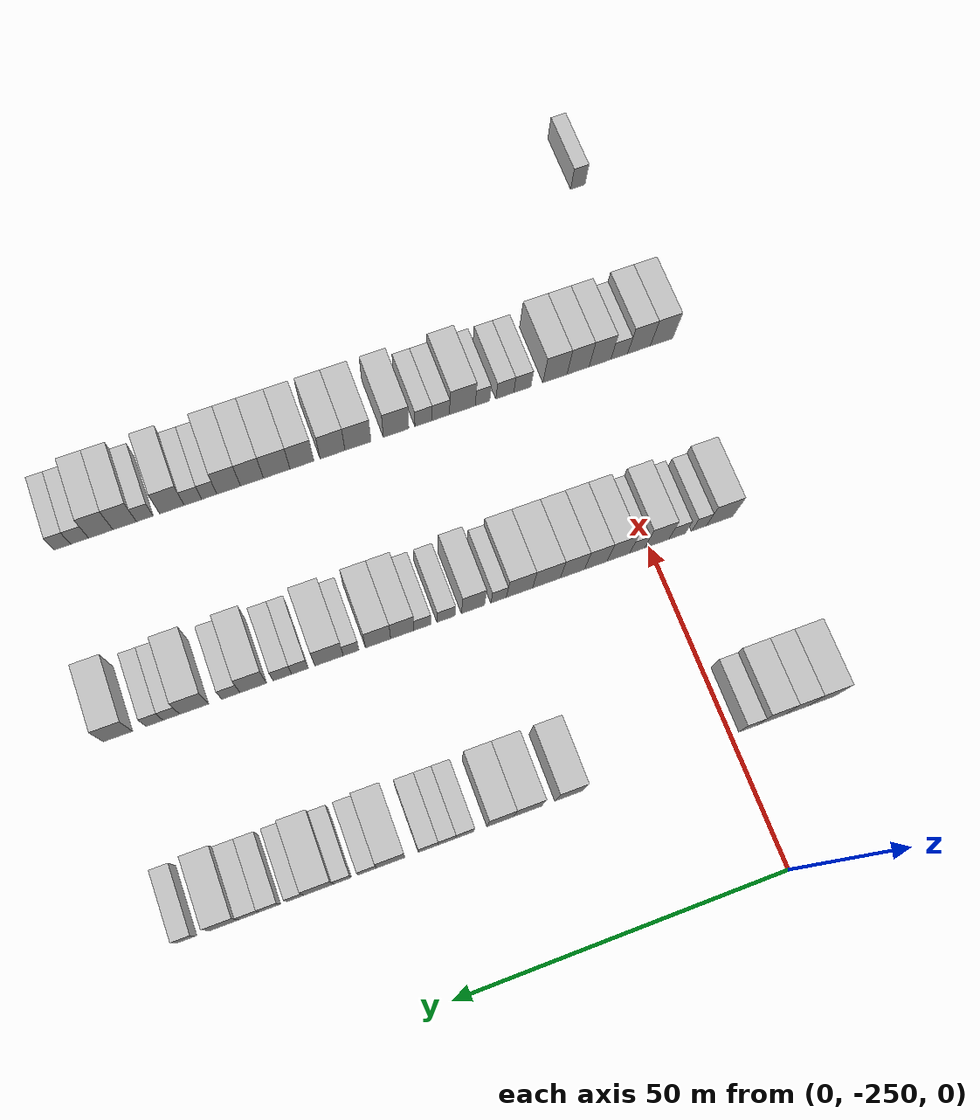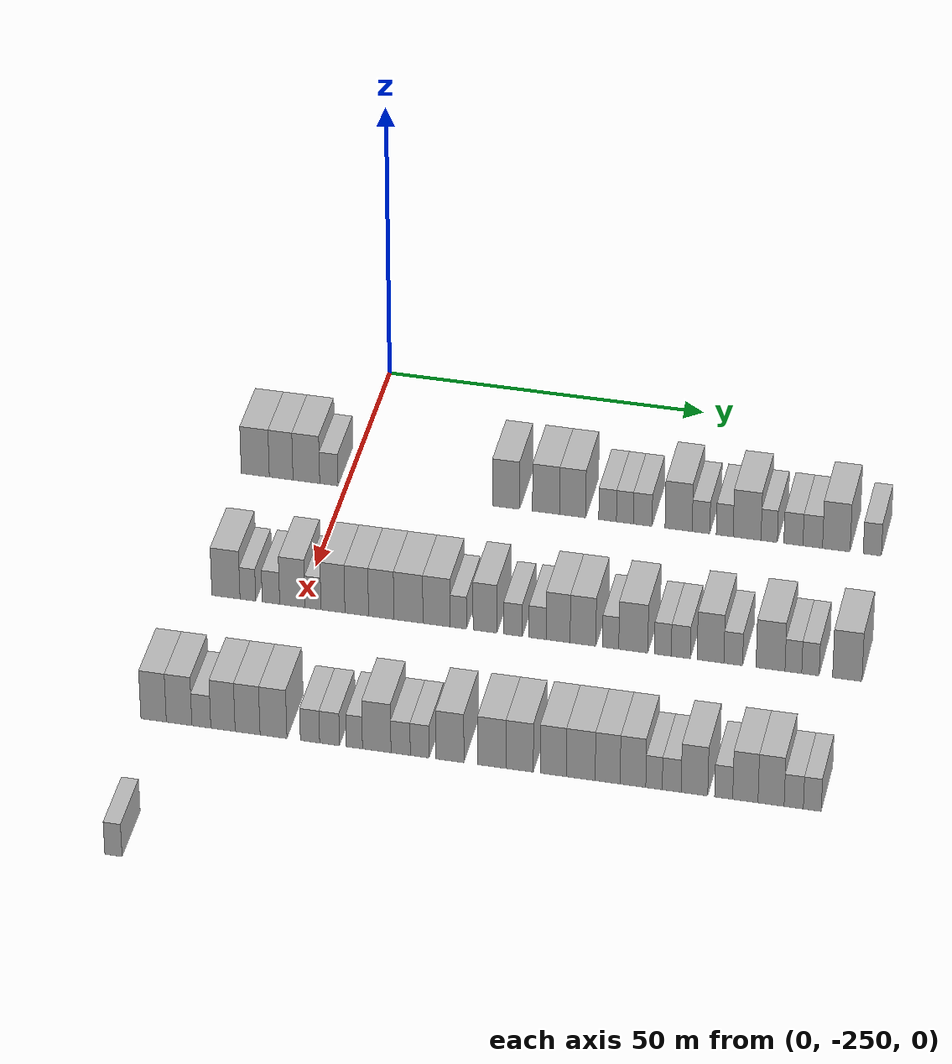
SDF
<sdf version="1.6">
 <world name="default">
  <model name="building_52">
   <static>1</static>
   <pose>25.0000 -264.3539 0 0.000000 0.000000 0.000000</pose>
   <link name="link">
    <pose>0 0 4.50 0 0 0</pose>
    <collision name="collision"><geometry><box><size>10.0000 4.4242 9.0000</size></box></geometry></collision>
    <visual name="visual">
     <cast_shadows>0</cast_shadows>
     <geometry><box><size>10.0000 4.4242 9.0000</size></box></geometry>
     <material>
      <script>
       <uri>model://HANNAS_wall/materials/scripts</uri>
       <uri>model://HANNAS_wall/materials/textures</uri>
       <name>vrc/HANNAS_wall</name>
      </script>
     </material>
    </visual>
   </link>
  </model>
  <model name="building_53">
   <static>1</static>
   <pose>25.0000 -260.2732 0 0.000000 0.000000 0.000000</pose>
   <link name="link">
    <pose>0 0 4.50 0 0 0</pose>
    <collision name="collision"><geometry><box><size>10.0000 3.7373 9.0000</size></box></geometry></collision>
    <visual name="visual">
     <cast_shadows>0</cast_shadows>
     <geometry><box><size>10.0000 3.7373 9.0000</size></box></geometry>
     <material>
      <script>
       <uri>model://HANNAS_wall/materials/scripts</uri>
       <uri>model://HANNAS_wall/materials/textures</uri>
       <name>vrc/HANNAS_wall</name>
      </script>
     </material>
    </visual>
   </link>
  </model>
  <model name="building_54">
   <static>1</static>
   <pose>25.0000 -256.3035 0 0.000000 0.000000 0.000000</pose>
   <link name="link">
    <pose>0 0 4.50 0 0 0</pose>
    <collision name="collision"><geometry><box><size>10.0000 4.2020 9.0000</size></box></geometry></collision>
    <visual name="visual">
     <cast_shadows>0</cast_shadows>
     <geometry><box><size>10.0000 4.2020 9.0000</size></box></geometry>
     <material>
      <script>
       <uri>model://HANNAS_wall/materials/scripts</uri>
       <uri>model://HANNAS_wall/materials/textures</uri>
       <name>vrc/HANNAS_wall</name>
      </script>
     </material>
    </visual>
   </link>
  </model>
  <model name="building_55">
   <static>1</static>
   <pose>25.0000 -252.7609 0 0.000000 0.000000 0.000000</pose>
   <link name="link">
    <pose>0 0 3.00 0 0 0</pose>
    <collision name="collision"><geometry><box><size>10.0000 2.8833 6.0000</size></box></geometry></collision>
    <visual name="visual">
     <cast_shadows>0</cast_shadows>
     <geometry><box><size>10.0000 2.8833 6.0000</size></box></geometry>
     <material>
      <script>
       <uri>model://HANNAS_wall/materials/scripts</uri>
       <uri>model://HANNAS_wall/materials/textures</uri>
       <name>vrc/HANNAS_wall</name>
      </script>
     </material>
    </visual>
   </link>
  </model>
  <model name="building_56">
   <static>1</static>
   <pose>25.0000 -225.0276 0 0.000000 0.000000 0.000000</pose>
   <link name="link">
    <pose>0 0 4.50 0 0 0</pose>
    <collision name="collision"><geometry><box><size>10.0000 4.1944 9.0000</size></box></geometry></collision>
    <visual name="visual">
     <cast_shadows>0</cast_shadows>
     <geometry><box><size>10.0000 4.1944 9.0000</size></box></geometry>
     <material>
      <script>
       <uri>model://HANNAS_wall/materials/scripts</uri>
       <uri>model://HANNAS_wall/materials/textures</uri>
       <name>vrc/HANNAS_wall</name>
      </script>
     </material>
    </visual>
   </link>
  </model>
  <model name="building_57">
   <static>1</static>
   <pose>25.0000 -218.8105 0 0.000000 0.000000 0.000000</pose>
   <link name="link">
    <pose>0 0 4.50 0 0 0</pose>
    <collision name="collision"><geometry><box><size>10.0000 4.2399 9.0000</size></box></geometry></collision>
    <visual name="visual">
     <cast_shadows>0</cast_shadows>
     <geometry><box><size>10.0000 4.2399 9.0000</size></box></geometry>
     <material>
      <script>
       <uri>model://HANNAS_wall/materials/scripts</uri>
       <uri>model://HANNAS_wall/materials/textures</uri>
       <name>vrc/HANNAS_wall</name>
      </script>
     </material>
    </visual>
   </link>
  </model>
  <model name="building_58">
   <static>1</static>
   <pose>25.0000 -214.6751 0 0.000000 0.000000 0.000000</pose>
   <link name="link">
    <pose>0 0 4.50 0 0 0</pose>
    <collision name="collision"><geometry><box><size>10.0000 4.0309 9.0000</size></box></geometry></collision>
    <visual name="visual">
     <cast_shadows>0</cast_shadows>
     <geometry><box><size>10.0000 4.0309 9.0000</size></box></geometry>
     <material>
      <script>
       <uri>model://HANNAS_wall/materials/scripts</uri>
       <uri>model://HANNAS_wall/materials/textures</uri>
       <name>vrc/HANNAS_wall</name>
      </script>
     </material>
    </visual>
   </link>
  </model>
  <model name="building_59">
   <static>1</static>
   <pose>25.0000 -209.2953 0 0.000000 0.000000 0.000000</pose>
   <link name="link">
    <pose>0 0 3.00 0 0 0</pose>
    <collision name="collision"><geometry><box><size>10.0000 2.7288 6.0000</size></box></geometry></collision>
    <visual name="visual">
     <cast_shadows>0</cast_shadows>
     <geometry><box><size>10.0000 2.7288 6.0000</size></box></geometry>
     <material>
      <script>
       <uri>model://HANNAS_wall/materials/scripts</uri>
       <uri>model://HANNAS_wall/materials/textures</uri>
       <name>vrc/HANNAS_wall</name>
      </script>
     </material>
    </visual>
   </link>
  </model>
  <model name="building_60">
   <static>1</static>
   <pose>25.0000 -206.6286 0 0.000000 0.000000 0.000000</pose>
   <link name="link">
    <pose>0 0 3.00 0 0 0</pose>
    <collision name="collision"><geometry><box><size>10.0000 2.6047 6.0000</size></box></geometry></collision>
    <visual name="visual">
     <cast_shadows>0</cast_shadows>
     <geometry><box><size>10.0000 2.6047 6.0000</size></box></geometry>
     <material>
      <script>
       <uri>model://HANNAS_wall/materials/scripts</uri>
       <uri>model://HANNAS_wall/materials/textures</uri>
       <name>vrc/HANNAS_wall</name>
      </script>
     </material>
    </visual>
   </link>
  </model>
  <model name="building_61">
   <static>1</static>
   <pose>25.0000 -203.8729 0 0.000000 0.000000 0.000000</pose>
   <link name="link">
    <pose>0 0 3.00 0 0 0</pose>
    <collision name="collision"><geometry><box><size>10.0000 2.9066 6.0000</size></box></geometry></collision>
    <visual name="visual">
     <cast_shadows>0</cast_shadows>
     <geometry><box><size>10.0000 2.9066 6.0000</size></box></geometry>
     <material>
      <script>
       <uri>model://HANNAS_wall/materials/scripts</uri>
       <uri>model://HANNAS_wall/materials/textures</uri>
       <name>vrc/HANNAS_wall</name>
      </script>
     </material>
    </visual>
   </link>
  </model>
  <model name="building_62">
   <static>1</static>
   <pose>25.0000 -198.3297 0 0.000000 0.000000 0.000000</pose>
   <link name="link">
    <pose>0 0 4.50 0 0 0</pose>
    <collision name="collision"><geometry><box><size>10.0000 4.1796 9.0000</size></box></geometry></collision>
    <visual name="visual">
     <cast_shadows>0</cast_shadows>
     <geometry><box><size>10.0000 4.1796 9.0000</size></box></geometry>
     <material>
      <script>
       <uri>model://HANNAS_wall/materials/scripts</uri>
       <uri>model://HANNAS_wall/materials/textures</uri>
       <name>vrc/HANNAS_wall</name>
      </script>
     </material>
    </visual>
   </link>
  </model>
  <model name="building_63">
   <static>1</static>
   <pose>25.0000 -194.8863 0 0.000000 0.000000 0.000000</pose>
   <link name="link">
    <pose>0 0 3.00 0 0 0</pose>
    <collision name="collision"><geometry><box><size>10.0000 2.7073 6.0000</size></box></geometry></collision>
    <visual name="visual">
     <cast_shadows>0</cast_shadows>
     <geometry><box><size>10.0000 2.7073 6.0000</size></box></geometry>
     <material>
      <script>
       <uri>model://HANNAS_wall/materials/scripts</uri>
       <uri>model://HANNAS_wall/materials/textures</uri>
       <name>vrc/HANNAS_wall</name>
      </script>
     </material>
    </visual>
   </link>
  </model>
  <model name="building_64">
   <static>1</static>
   <pose>25.0000 -191.2418 0 0.000000 0.000000 0.000000</pose>
   <link name="link">
    <pose>0 0 3.00 0 0 0</pose>
    <collision name="collision"><geometry><box><size>10.0000 2.5816 6.0000</size></box></geometry></collision>
    <visual name="visual">
     <cast_shadows>0</cast_shadows>
     <geometry><box><size>10.0000 2.5816 6.0000</size></box></geometry>
     <material>
      <script>
       <uri>model://HANNAS_wall/materials/scripts</uri>
       <uri>model://HANNAS_wall/materials/textures</uri>
       <name>vrc/HANNAS_wall</name>
      </script>
     </material>
    </visual>
   </link>
  </model>
  <model name="building_65">
   <static>1</static>
   <pose>25.0000 -187.8075 0 0.000000 0.000000 0.000000</pose>
   <link name="link">
    <pose>0 0 4.50 0 0 0</pose>
    <collision name="collision"><geometry><box><size>10.0000 4.2869 9.0000</size></box></geometry></collision>
    <visual name="visual">
     <cast_shadows>0</cast_shadows>
     <geometry><box><size>10.0000 4.2869 9.0000</size></box></geometry>
     <material>
      <script>
       <uri>model://HANNAS_wall/materials/scripts</uri>
       <uri>model://HANNAS_wall/materials/textures</uri>
       <name>vrc/HANNAS_wall</name>
      </script>
     </material>
    </visual>
   </link>
  </model>
  <model name="building_66">
   <static>1</static>
   <pose>25.0000 -184.4116 0 0.000000 0.000000 0.000000</pose>
   <link name="link">
    <pose>0 0 3.00 0 0 0</pose>
    <collision name="collision"><geometry><box><size>10.0000 2.5050 6.0000</size></box></geometry></collision>
    <visual name="visual">
     <cast_shadows>0</cast_shadows>
     <geometry><box><size>10.0000 2.5050 6.0000</size></box></geometry>
     <material>
      <script>
       <uri>model://HANNAS_wall/materials/scripts</uri>
       <uri>model://HANNAS_wall/materials/textures</uri>
       <name>vrc/HANNAS_wall</name>
      </script>
     </material>
    </visual>
   </link>
  </model>
  <model name="building_67">
   <static>1</static>
   <pose>25.0000 -180.6996 0 0.000000 0.000000 0.000000</pose>
   <link name="link">
    <pose>0 0 3.00 0 0 0</pose>
    <collision name="collision"><geometry><box><size>10.0000 2.9188 6.0000</size></box></geometry></collision>
    <visual name="visual">
     <cast_shadows>0</cast_shadows>
     <geometry><box><size>10.0000 2.9188 6.0000</size></box></geometry>
     <material>
      <script>
       <uri>model://HANNAS_wall/materials/scripts</uri>
       <uri>model://HANNAS_wall/materials/textures</uri>
       <name>vrc/HANNAS_wall</name>
      </script>
     </material>
    </visual>
   </link>
  </model>
  <model name="building_68">
   <static>1</static>
   <pose>25.0000 -177.7435 0 0.000000 0.000000 0.000000</pose>
   <link name="link">
    <pose>0 0 3.00 0 0 0</pose>
    <collision name="collision"><geometry><box><size>10.0000 2.9934 6.0000</size></box></geometry></collision>
    <visual name="visual">
     <cast_shadows>0</cast_shadows>
     <geometry><box><size>10.0000 2.9934 6.0000</size></box></geometry>
     <material>
      <script>
       <uri>model://HANNAS_wall/materials/scripts</uri>
       <uri>model://HANNAS_wall/materials/textures</uri>
       <name>vrc/HANNAS_wall</name>
      </script>
     </material>
    </visual>
   </link>
  </model>
  <model name="building_69">
   <static>1</static>
   <pose>25.0000 -174.1419 0 0.000000 0.000000 0.000000</pose>
   <link name="link">
    <pose>0 0 4.50 0 0 0</pose>
    <collision name="collision"><geometry><box><size>10.0000 4.2098 9.0000</size></box></geometry></collision>
    <visual name="visual">
     <cast_shadows>0</cast_shadows>
     <geometry><box><size>10.0000 4.2098 9.0000</size></box></geometry>
     <material>
      <script>
       <uri>model://HANNAS_wall/materials/scripts</uri>
       <uri>model://HANNAS_wall/materials/textures</uri>
       <name>vrc/HANNAS_wall</name>
      </script>
     </material>
    </visual>
   </link>
  </model>
  <model name="building_70">
   <static>1</static>
   <pose>25.0000 -168.6512 0 0.000000 0.000000 0.000000</pose>
   <link name="link">
    <pose>0 0 3.00 0 0 0</pose>
    <collision name="collision"><geometry><box><size>10.0000 2.7716 6.0000</size></box></geometry></collision>
    <visual name="visual">
     <cast_shadows>0</cast_shadows>
     <geometry><box><size>10.0000 2.7716 6.0000</size></box></geometry>
     <material>
      <script>
       <uri>model://HANNAS_wall/materials/scripts</uri>
       <uri>model://HANNAS_wall/materials/textures</uri>
       <name>vrc/HANNAS_wall</name>
      </script>
     </material>
    </visual>
   </link>
  </model>
  <model name="building_274">
   <static>1</static>
   <pose>55.0000 -261.4365 0 0.000000 0.000000 0.000000</pose>
   <link name="link">
    <pose>0 0 4.50 0 0 0</pose>
    <collision name="collision"><geometry><box><size>10.0000 4.3204 9.0000</size></box></geometry></collision>
    <visual name="visual">
     <cast_shadows>0</cast_shadows>
     <geometry><box><size>10.0000 4.3204 9.0000</size></box></geometry>
     <material>
      <script>
       <uri>model://HANNAS_wall/materials/scripts</uri>
       <uri>model://HANNAS_wall/materials/textures</uri>
       <name>vrc/HANNAS_wall</name>
      </script>
     </material>
    </visual>
   </link>
  </model>
  <model name="building_275">
   <static>1</static>
   <pose>55.0000 -258.0679 0 0.000000 0.000000 0.000000</pose>
   <link name="link">
    <pose>0 0 3.00 0 0 0</pose>
    <collision name="collision"><geometry><box><size>10.0000 2.4168 6.0000</size></box></geometry></collision>
    <visual name="visual">
     <cast_shadows>0</cast_shadows>
     <geometry><box><size>10.0000 2.4168 6.0000</size></box></geometry>
     <material>
      <script>
       <uri>model://HANNAS_wall/materials/scripts</uri>
       <uri>model://HANNAS_wall/materials/textures</uri>
       <name>vrc/HANNAS_wall</name>
      </script>
     </material>
    </visual>
   </link>
  </model>
  <model name="building_276">
   <static>1</static>
   <pose>55.0000 -254.5238 0 0.000000 0.000000 0.000000</pose>
   <link name="link">
    <pose>0 0 3.00 0 0 0</pose>
    <collision name="collision"><geometry><box><size>10.0000 2.6714 6.0000</size></box></geometry></collision>
    <visual name="visual">
     <cast_shadows>0</cast_shadows>
     <geometry><box><size>10.0000 2.6714 6.0000</size></box></geometry>
     <material>
      <script>
       <uri>model://HANNAS_wall/materials/scripts</uri>
       <uri>model://HANNAS_wall/materials/textures</uri>
       <name>vrc/HANNAS_wall</name>
      </script>
     </material>
    </visual>
   </link>
  </model>
  <model name="building_277">
   <static>1</static>
   <pose>55.0000 -251.2315 0 0.000000 0.000000 0.000000</pose>
   <link name="link">
    <pose>0 0 4.50 0 0 0</pose>
    <collision name="collision"><geometry><box><size>10.0000 3.9133 9.0000</size></box></geometry></collision>
    <visual name="visual">
     <cast_shadows>0</cast_shadows>
     <geometry><box><size>10.0000 3.9133 9.0000</size></box></geometry>
     <material>
      <script>
       <uri>model://HANNAS_wall/materials/scripts</uri>
       <uri>model://HANNAS_wall/materials/textures</uri>
       <name>vrc/HANNAS_wall</name>
      </script>
     </material>
    </visual>
   </link>
  </model>
  <model name="building_278">
   <static>1</static>
   <pose>55.0000 -248.0635 0 0.000000 0.000000 0.000000</pose>
   <link name="link">
    <pose>0 0 3.00 0 0 0</pose>
    <collision name="collision"><geometry><box><size>10.0000 2.4226 6.0000</size></box></geometry></collision>
    <visual name="visual">
     <cast_shadows>0</cast_shadows>
     <geometry><box><size>10.0000 2.4226 6.0000</size></box></geometry>
     <material>
      <script>
       <uri>model://HANNAS_wall/materials/scripts</uri>
       <uri>model://HANNAS_wall/materials/textures</uri>
       <name>vrc/HANNAS_wall</name>
      </script>
     </material>
    </visual>
   </link>
  </model>
  <model name="building_279">
   <static>1</static>
   <pose>55.0000 -245.0272 0 0.000000 0.000000 0.000000</pose>
   <link name="link">
    <pose>0 0 4.50 0 0 0</pose>
    <collision name="collision"><geometry><box><size>10.0000 3.6500 9.0000</size></box></geometry></collision>
    <visual name="visual">
     <cast_shadows>0</cast_shadows>
     <geometry><box><size>10.0000 3.6500 9.0000</size></box></geometry>
     <material>
      <script>
       <uri>model://HANNAS_wall/materials/scripts</uri>
       <uri>model://HANNAS_wall/materials/textures</uri>
       <name>vrc/HANNAS_wall</name>
      </script>
     </material>
    </visual>
   </link>
  </model>
  <model name="building_280">
   <static>1</static>
   <pose>55.0000 -241.3953 0 0.000000 0.000000 0.000000</pose>
   <link name="link">
    <pose>0 0 4.50 0 0 0</pose>
    <collision name="collision"><geometry><box><size>10.0000 3.6138 9.0000</size></box></geometry></collision>
    <visual name="visual">
     <cast_shadows>0</cast_shadows>
     <geometry><box><size>10.0000 3.6138 9.0000</size></box></geometry>
     <material>
      <script>
       <uri>model://HANNAS_wall/materials/scripts</uri>
       <uri>model://HANNAS_wall/materials/textures</uri>
       <name>vrc/HANNAS_wall</name>
      </script>
     </material>
    </visual>
   </link>
  </model>
  <model name="building_281">
   <static>1</static>
   <pose>55.0000 -237.6530 0 0.000000 0.000000 0.000000</pose>
   <link name="link">
    <pose>0 0 4.50 0 0 0</pose>
    <collision name="collision"><geometry><box><size>10.0000 3.8709 9.0000</size></box></geometry></collision>
    <visual name="visual">
     <cast_shadows>0</cast_shadows>
     <geometry><box><size>10.0000 3.8709 9.0000</size></box></geometry>
     <material>
      <script>
       <uri>model://HANNAS_wall/materials/scripts</uri>
       <uri>model://HANNAS_wall/materials/textures</uri>
       <name>vrc/HANNAS_wall</name>
      </script>
     </material>
    </visual>
   </link>
  </model>
  <model name="building_282">
   <static>1</static>
   <pose>55.0000 -233.5101 0 0.000000 0.000000 0.000000</pose>
   <link name="link">
    <pose>0 0 4.50 0 0 0</pose>
    <collision name="collision"><geometry><box><size>10.0000 4.4148 9.0000</size></box></geometry></collision>
    <visual name="visual">
     <cast_shadows>0</cast_shadows>
     <geometry><box><size>10.0000 4.4148 9.0000</size></box></geometry>
     <material>
      <script>
       <uri>model://HANNAS_wall/materials/scripts</uri>
       <uri>model://HANNAS_wall/materials/textures</uri>
       <name>vrc/HANNAS_wall</name>
      </script>
     </material>
    </visual>
   </link>
  </model>
  <model name="building_283">
   <static>1</static>
   <pose>55.0000 -229.2245 0 0.000000 0.000000 0.000000</pose>
   <link name="link">
    <pose>0 0 4.50 0 0 0</pose>
    <collision name="collision"><geometry><box><size>10.0000 4.1564 9.0000</size></box></geometry></collision>
    <visual name="visual">
     <cast_shadows>0</cast_shadows>
     <geometry><box><size>10.0000 4.1564 9.0000</size></box></geometry>
     <material>
      <script>
       <uri>model://HANNAS_wall/materials/scripts</uri>
       <uri>model://HANNAS_wall/materials/textures</uri>
       <name>vrc/HANNAS_wall</name>
      </script>
     </material>
    </visual>
   </link>
  </model>
  <model name="building_284">
   <static>1</static>
   <pose>55.0000 -225.9211 0 0.000000 0.000000 0.000000</pose>
   <link name="link">
    <pose>0 0 3.00 0 0 0</pose>
    <collision name="collision"><geometry><box><size>10.0000 2.4505 6.0000</size></box></geometry></collision>
    <visual name="visual">
     <cast_shadows>0</cast_shadows>
     <geometry><box><size>10.0000 2.4505 6.0000</size></box></geometry>
     <material>
      <script>
       <uri>model://HANNAS_wall/materials/scripts</uri>
       <uri>model://HANNAS_wall/materials/textures</uri>
       <name>vrc/HANNAS_wall</name>
      </script>
     </material>
    </visual>
   </link>
  </model>
  <model name="building_285">
   <static>1</static>
   <pose>55.0000 -221.8788 0 0.000000 0.000000 0.000000</pose>
   <link name="link">
    <pose>0 0 4.50 0 0 0</pose>
    <collision name="collision"><geometry><box><size>10.0000 3.6340 9.0000</size></box></geometry></collision>
    <visual name="visual">
     <cast_shadows>0</cast_shadows>
     <geometry><box><size>10.0000 3.6340 9.0000</size></box></geometry>
     <material>
      <script>
       <uri>model://HANNAS_wall/materials/scripts</uri>
       <uri>model://HANNAS_wall/materials/textures</uri>
       <name>vrc/HANNAS_wall</name>
      </script>
     </material>
    </visual>
   </link>
  </model>
  <model name="building_286">
   <static>1</static>
   <pose>55.0000 -217.6488 0 0.000000 0.000000 0.000000</pose>
   <link name="link">
    <pose>0 0 3.00 0 0 0</pose>
    <collision name="collision"><geometry><box><size>10.0000 2.8260 6.0000</size></box></geometry></collision>
    <visual name="visual">
     <cast_shadows>0</cast_shadows>
     <geometry><box><size>10.0000 2.8260 6.0000</size></box></geometry>
     <material>
      <script>
       <uri>model://HANNAS_wall/materials/scripts</uri>
       <uri>model://HANNAS_wall/materials/textures</uri>
       <name>vrc/HANNAS_wall</name>
      </script>
     </material>
    </visual>
   </link>
  </model>
  <model name="building_287">
   <static>1</static>
   <pose>55.0000 -213.9366 0 0.000000 0.000000 0.000000</pose>
   <link name="link">
    <pose>0 0 3.00 0 0 0</pose>
    <collision name="collision"><geometry><box><size>10.0000 2.5986 6.0000</size></box></geometry></collision>
    <visual name="visual">
     <cast_shadows>0</cast_shadows>
     <geometry><box><size>10.0000 2.5986 6.0000</size></box></geometry>
     <material>
      <script>
       <uri>model://HANNAS_wall/materials/scripts</uri>
       <uri>model://HANNAS_wall/materials/textures</uri>
       <name>vrc/HANNAS_wall</name>
      </script>
     </material>
    </visual>
   </link>
  </model>
  <model name="building_288">
   <static>1</static>
   <pose>55.0000 -210.8273 0 0.000000 0.000000 0.000000</pose>
   <link name="link">
    <pose>0 0 4.50 0 0 0</pose>
    <collision name="collision"><geometry><box><size>10.0000 3.6199 9.0000</size></box></geometry></collision>
    <visual name="visual">
     <cast_shadows>0</cast_shadows>
     <geometry><box><size>10.0000 3.6199 9.0000</size></box></geometry>
     <material>
      <script>
       <uri>model://HANNAS_wall/materials/scripts</uri>
       <uri>model://HANNAS_wall/materials/textures</uri>
       <name>vrc/HANNAS_wall</name>
      </script>
     </material>
    </visual>
   </link>
  </model>
  <model name="building_289">
   <static>1</static>
   <pose>55.0000 -207.0760 0 0.000000 0.000000 0.000000</pose>
   <link name="link">
    <pose>0 0 4.50 0 0 0</pose>
    <collision name="collision"><geometry><box><size>10.0000 3.8826 9.0000</size></box></geometry></collision>
    <visual name="visual">
     <cast_shadows>0</cast_shadows>
     <geometry><box><size>10.0000 3.8826 9.0000</size></box></geometry>
     <material>
      <script>
       <uri>model://HANNAS_wall/materials/scripts</uri>
       <uri>model://HANNAS_wall/materials/textures</uri>
       <name>vrc/HANNAS_wall</name>
      </script>
     </material>
    </visual>
   </link>
  </model>
  <model name="building_290">
   <static>1</static>
   <pose>55.0000 -202.9175 0 0.000000 0.000000 0.000000</pose>
   <link name="link">
    <pose>0 0 3.00 0 0 0</pose>
    <collision name="collision"><geometry><box><size>10.0000 2.4345 6.0000</size></box></geometry></collision>
    <visual name="visual">
     <cast_shadows>0</cast_shadows>
     <geometry><box><size>10.0000 2.4345 6.0000</size></box></geometry>
     <material>
      <script>
       <uri>model://HANNAS_wall/materials/scripts</uri>
       <uri>model://HANNAS_wall/materials/textures</uri>
       <name>vrc/HANNAS_wall</name>
      </script>
     </material>
    </visual>
   </link>
  </model>
  <model name="building_291">
   <static>1</static>
   <pose>55.0000 -199.5201 0 0.000000 0.000000 0.000000</pose>
   <link name="link">
    <pose>0 0 4.50 0 0 0</pose>
    <collision name="collision"><geometry><box><size>10.0000 4.3602 9.0000</size></box></geometry></collision>
    <visual name="visual">
     <cast_shadows>0</cast_shadows>
     <geometry><box><size>10.0000 4.3602 9.0000</size></box></geometry>
     <material>
      <script>
       <uri>model://HANNAS_wall/materials/scripts</uri>
       <uri>model://HANNAS_wall/materials/textures</uri>
       <name>vrc/HANNAS_wall</name>
      </script>
     </material>
    </visual>
   </link>
  </model>
  <model name="building_292">
   <static>1</static>
   <pose>55.0000 -195.0797 0 0.000000 0.000000 0.000000</pose>
   <link name="link">
    <pose>0 0 3.00 0 0 0</pose>
    <collision name="collision"><geometry><box><size>10.0000 2.5207 6.0000</size></box></geometry></collision>
    <visual name="visual">
     <cast_shadows>0</cast_shadows>
     <geometry><box><size>10.0000 2.5207 6.0000</size></box></geometry>
     <material>
      <script>
       <uri>model://HANNAS_wall/materials/scripts</uri>
       <uri>model://HANNAS_wall/materials/textures</uri>
       <name>vrc/HANNAS_wall</name>
      </script>
     </material>
    </visual>
   </link>
  </model>
  <model name="building_293">
   <static>1</static>
   <pose>55.0000 -192.3913 0 0.000000 0.000000 0.000000</pose>
   <link name="link">
    <pose>0 0 3.00 0 0 0</pose>
    <collision name="collision"><geometry><box><size>10.0000 2.8560 6.0000</size></box></geometry></collision>
    <visual name="visual">
     <cast_shadows>0</cast_shadows>
     <geometry><box><size>10.0000 2.8560 6.0000</size></box></geometry>
     <material>
      <script>
       <uri>model://HANNAS_wall/materials/scripts</uri>
       <uri>model://HANNAS_wall/materials/textures</uri>
       <name>vrc/HANNAS_wall</name>
      </script>
     </material>
    </visual>
   </link>
  </model>
  <model name="building_294">
   <static>1</static>
   <pose>55.0000 -187.9575 0 0.000000 0.000000 0.000000</pose>
   <link name="link">
    <pose>0 0 4.50 0 0 0</pose>
    <collision name="collision"><geometry><box><size>10.0000 4.0116 9.0000</size></box></geometry></collision>
    <visual name="visual">
     <cast_shadows>0</cast_shadows>
     <geometry><box><size>10.0000 4.0116 9.0000</size></box></geometry>
     <material>
      <script>
       <uri>model://HANNAS_wall/materials/scripts</uri>
       <uri>model://HANNAS_wall/materials/textures</uri>
       <name>vrc/HANNAS_wall</name>
      </script>
     </material>
    </visual>
   </link>
  </model>
  <model name="building_295">
   <static>1</static>
   <pose>55.0000 -184.5511 0 0.000000 0.000000 0.000000</pose>
   <link name="link">
    <pose>0 0 3.00 0 0 0</pose>
    <collision name="collision"><geometry><box><size>10.0000 2.8013 6.0000</size></box></geometry></collision>
    <visual name="visual">
     <cast_shadows>0</cast_shadows>
     <geometry><box><size>10.0000 2.8013 6.0000</size></box></geometry>
     <material>
      <script>
       <uri>model://HANNAS_wall/materials/scripts</uri>
       <uri>model://HANNAS_wall/materials/textures</uri>
       <name>vrc/HANNAS_wall</name>
      </script>
     </material>
    </visual>
   </link>
  </model>
  <model name="building_296">
   <static>1</static>
   <pose>55.0000 -178.9897 0 0.000000 0.000000 0.000000</pose>
   <link name="link">
    <pose>0 0 4.50 0 0 0</pose>
    <collision name="collision"><geometry><box><size>10.0000 4.3215 9.0000</size></box></geometry></collision>
    <visual name="visual">
     <cast_shadows>0</cast_shadows>
     <geometry><box><size>10.0000 4.3215 9.0000</size></box></geometry>
     <material>
      <script>
       <uri>model://HANNAS_wall/materials/scripts</uri>
       <uri>model://HANNAS_wall/materials/textures</uri>
       <name>vrc/HANNAS_wall</name>
      </script>
     </material>
    </visual>
   </link>
  </model>
  <model name="building_297">
   <static>1</static>
   <pose>55.0000 -175.5819 0 0.000000 0.000000 0.000000</pose>
   <link name="link">
    <pose>0 0 3.00 0 0 0</pose>
    <collision name="collision"><geometry><box><size>10.0000 2.4941 6.0000</size></box></geometry></collision>
    <visual name="visual">
     <cast_shadows>0</cast_shadows>
     <geometry><box><size>10.0000 2.4941 6.0000</size></box></geometry>
     <material>
      <script>
       <uri>model://HANNAS_wall/materials/scripts</uri>
       <uri>model://HANNAS_wall/materials/textures</uri>
       <name>vrc/HANNAS_wall</name>
      </script>
     </material>
    </visual>
   </link>
  </model>
  <model name="building_298">
   <static>1</static>
   <pose>55.0000 -173.0413 0 0.000000 0.000000 0.000000</pose>
   <link name="link">
    <pose>0 0 3.00 0 0 0</pose>
    <collision name="collision"><geometry><box><size>10.0000 2.5871 6.0000</size></box></geometry></collision>
    <visual name="visual">
     <cast_shadows>0</cast_shadows>
     <geometry><box><size>10.0000 2.5871 6.0000</size></box></geometry>
     <material>
      <script>
       <uri>model://HANNAS_wall/materials/scripts</uri>
       <uri>model://HANNAS_wall/materials/textures</uri>
       <name>vrc/HANNAS_wall</name>
      </script>
     </material>
    </visual>
   </link>
  </model>
  <model name="building_299">
   <static>1</static>
   <pose>55.0000 -167.5662 0 0.000000 0.000000 0.000000</pose>
   <link name="link">
    <pose>0 0 4.50 0 0 0</pose>
    <collision name="collision"><geometry><box><size>10.0000 4.3630 9.0000</size></box></geometry></collision>
    <visual name="visual">
     <cast_shadows>0</cast_shadows>
     <geometry><box><size>10.0000 4.3630 9.0000</size></box></geometry>
     <material>
      <script>
       <uri>model://HANNAS_wall/materials/scripts</uri>
       <uri>model://HANNAS_wall/materials/textures</uri>
       <name>vrc/HANNAS_wall</name>
      </script>
     </material>
    </visual>
   </link>
  </model>
  <model name="building_506">
   <static>1</static>
   <pose>85.0000 -264.7142 0 0.000000 0.000000 0.000000</pose>
   <link name="link">
    <pose>0 0 4.50 0 0 0</pose>
    <collision name="collision"><geometry><box><size>10.0000 3.8148 9.0000</size></box></geometry></collision>
    <visual name="visual">
     <cast_shadows>0</cast_shadows>
     <geometry><box><size>10.0000 3.8148 9.0000</size></box></geometry>
     <material>
      <script>
       <uri>model://HANNAS_wall/materials/scripts</uri>
       <uri>model://HANNAS_wall/materials/textures</uri>
       <name>vrc/HANNAS_wall</name>
      </script>
     </material>
    </visual>
   </link>
  </model>
  <model name="building_507">
   <static>1</static>
   <pose>85.0000 -260.8913 0 0.000000 0.000000 0.000000</pose>
   <link name="link">
    <pose>0 0 4.50 0 0 0</pose>
    <collision name="collision"><geometry><box><size>10.0000 3.8309 9.0000</size></box></geometry></collision>
    <visual name="visual">
     <cast_shadows>0</cast_shadows>
     <geometry><box><size>10.0000 3.8309 9.0000</size></box></geometry>
     <material>
      <script>
       <uri>model://HANNAS_wall/materials/scripts</uri>
       <uri>model://HANNAS_wall/materials/textures</uri>
       <name>vrc/HANNAS_wall</name>
      </script>
     </material>
    </visual>
   </link>
  </model>
  <model name="building_508">
   <static>1</static>
   <pose>85.0000 -257.5598 0 0.000000 0.000000 0.000000</pose>
   <link name="link">
    <pose>0 0 3.00 0 0 0</pose>
    <collision name="collision"><geometry><box><size>10.0000 2.8321 6.0000</size></box></geometry></collision>
    <visual name="visual">
     <cast_shadows>0</cast_shadows>
     <geometry><box><size>10.0000 2.8321 6.0000</size></box></geometry>
     <material>
      <script>
       <uri>model://HANNAS_wall/materials/scripts</uri>
       <uri>model://HANNAS_wall/materials/textures</uri>
       <name>vrc/HANNAS_wall</name>
      </script>
     </material>
    </visual>
   </link>
  </model>
  <model name="building_509">
   <static>1</static>
   <pose>85.0000 -254.3253 0 0.000000 0.000000 0.000000</pose>
   <link name="link">
    <pose>0 0 4.50 0 0 0</pose>
    <collision name="collision"><geometry><box><size>10.0000 3.6370 9.0000</size></box></geometry></collision>
    <visual name="visual">
     <cast_shadows>0</cast_shadows>
     <geometry><box><size>10.0000 3.6370 9.0000</size></box></geometry>
     <material>
      <script>
       <uri>model://HANNAS_wall/materials/scripts</uri>
       <uri>model://HANNAS_wall/materials/textures</uri>
       <name>vrc/HANNAS_wall</name>
      </script>
     </material>
    </visual>
   </link>
  </model>
  <model name="building_510">
   <static>1</static>
   <pose>85.0000 -250.6471 0 0.000000 0.000000 0.000000</pose>
   <link name="link">
    <pose>0 0 4.50 0 0 0</pose>
    <collision name="collision"><geometry><box><size>10.0000 3.7193 9.0000</size></box></geometry></collision>
    <visual name="visual">
     <cast_shadows>0</cast_shadows>
     <geometry><box><size>10.0000 3.7193 9.0000</size></box></geometry>
     <material>
      <script>
       <uri>model://HANNAS_wall/materials/scripts</uri>
       <uri>model://HANNAS_wall/materials/textures</uri>
       <name>vrc/HANNAS_wall</name>
      </script>
     </material>
    </visual>
   </link>
  </model>
  <model name="building_511">
   <static>1</static>
   <pose>85.0000 -246.7839 0 0.000000 0.000000 0.000000</pose>
   <link name="link">
    <pose>0 0 4.50 0 0 0</pose>
    <collision name="collision"><geometry><box><size>10.0000 4.0070 9.0000</size></box></geometry></collision>
    <visual name="visual">
     <cast_shadows>0</cast_shadows>
     <geometry><box><size>10.0000 4.0070 9.0000</size></box></geometry>
     <material>
      <script>
       <uri>model://HANNAS_wall/materials/scripts</uri>
       <uri>model://HANNAS_wall/materials/textures</uri>
       <name>vrc/HANNAS_wall</name>
      </script>
     </material>
    </visual>
   </link>
  </model>
  <model name="building_512">
   <static>1</static>
   <pose>85.0000 -241.3509 0 0.000000 0.000000 0.000000</pose>
   <link name="link">
    <pose>0 0 3.00 0 0 0</pose>
    <collision name="collision"><geometry><box><size>10.0000 2.8592 6.0000</size></box></geometry></collision>
    <visual name="visual">
     <cast_shadows>0</cast_shadows>
     <geometry><box><size>10.0000 2.8592 6.0000</size></box></geometry>
     <material>
      <script>
       <uri>model://HANNAS_wall/materials/scripts</uri>
       <uri>model://HANNAS_wall/materials/textures</uri>
       <name>vrc/HANNAS_wall</name>
      </script>
     </material>
    </visual>
   </link>
  </model>
  <model name="building_513">
   <static>1</static>
   <pose>85.0000 -238.4440 0 0.000000 0.000000 0.000000</pose>
   <link name="link">
    <pose>0 0 3.00 0 0 0</pose>
    <collision name="collision"><geometry><box><size>10.0000 2.9545 6.0000</size></box></geometry></collision>
    <visual name="visual">
     <cast_shadows>0</cast_shadows>
     <geometry><box><size>10.0000 2.9545 6.0000</size></box></geometry>
     <material>
      <script>
       <uri>model://HANNAS_wall/materials/scripts</uri>
       <uri>model://HANNAS_wall/materials/textures</uri>
       <name>vrc/HANNAS_wall</name>
      </script>
     </material>
    </visual>
   </link>
  </model>
  <model name="building_514">
   <static>1</static>
   <pose>85.0000 -234.7632 0 0.000000 0.000000 0.000000</pose>
   <link name="link">
    <pose>0 0 3.00 0 0 0</pose>
    <collision name="collision"><geometry><box><size>10.0000 2.4072 6.0000</size></box></geometry></collision>
    <visual name="visual">
     <cast_shadows>0</cast_shadows>
     <geometry><box><size>10.0000 2.4072 6.0000</size></box></geometry>
     <material>
      <script>
       <uri>model://HANNAS_wall/materials/scripts</uri>
       <uri>model://HANNAS_wall/materials/textures</uri>
       <name>vrc/HANNAS_wall</name>
      </script>
     </material>
    </visual>
   </link>
  </model>
  <model name="building_515">
   <static>1</static>
   <pose>85.0000 -231.4450 0 0.000000 0.000000 0.000000</pose>
   <link name="link">
    <pose>0 0 4.50 0 0 0</pose>
    <collision name="collision"><geometry><box><size>10.0000 4.2292 9.0000</size></box></geometry></collision>
    <visual name="visual">
     <cast_shadows>0</cast_shadows>
     <geometry><box><size>10.0000 4.2292 9.0000</size></box></geometry>
     <material>
      <script>
       <uri>model://HANNAS_wall/materials/scripts</uri>
       <uri>model://HANNAS_wall/materials/textures</uri>
       <name>vrc/HANNAS_wall</name>
      </script>
     </material>
    </visual>
   </link>
  </model>
  <model name="building_516">
   <static>1</static>
   <pose>85.0000 -227.9043 0 0.000000 0.000000 0.000000</pose>
   <link name="link">
    <pose>0 0 3.00 0 0 0</pose>
    <collision name="collision"><geometry><box><size>10.0000 2.8522 6.0000</size></box></geometry></collision>
    <visual name="visual">
     <cast_shadows>0</cast_shadows>
     <geometry><box><size>10.0000 2.8522 6.0000</size></box></geometry>
     <material>
      <script>
       <uri>model://HANNAS_wall/materials/scripts</uri>
       <uri>model://HANNAS_wall/materials/textures</uri>
       <name>vrc/HANNAS_wall</name>
      </script>
     </material>
    </visual>
   </link>
  </model>
  <model name="building_517">
   <static>1</static>
   <pose>85.0000 -225.0832 0 0.000000 0.000000 0.000000</pose>
   <link name="link">
    <pose>0 0 3.00 0 0 0</pose>
    <collision name="collision"><geometry><box><size>10.0000 2.7900 6.0000</size></box></geometry></collision>
    <visual name="visual">
     <cast_shadows>0</cast_shadows>
     <geometry><box><size>10.0000 2.7900 6.0000</size></box></geometry>
     <material>
      <script>
       <uri>model://HANNAS_wall/materials/scripts</uri>
       <uri>model://HANNAS_wall/materials/textures</uri>
       <name>vrc/HANNAS_wall</name>
      </script>
     </material>
    </visual>
   </link>
  </model>
  <model name="building_518">
   <static>1</static>
   <pose>85.0000 -220.6210 0 0.000000 0.000000 0.000000</pose>
   <link name="link">
    <pose>0 0 4.50 0 0 0</pose>
    <collision name="collision"><geometry><box><size>10.0000 4.1344 9.0000</size></box></geometry></collision>
    <visual name="visual">
     <cast_shadows>0</cast_shadows>
     <geometry><box><size>10.0000 4.1344 9.0000</size></box></geometry>
     <material>
      <script>
       <uri>model://HANNAS_wall/materials/scripts</uri>
       <uri>model://HANNAS_wall/materials/textures</uri>
       <name>vrc/HANNAS_wall</name>
      </script>
     </material>
    </visual>
   </link>
  </model>
  <model name="building_519">
   <static>1</static>
   <pose>85.0000 -214.4514 0 0.000000 0.000000 0.000000</pose>
   <link name="link">
    <pose>0 0 4.50 0 0 0</pose>
    <collision name="collision"><geometry><box><size>10.0000 4.2047 9.0000</size></box></geometry></collision>
    <visual name="visual">
     <cast_shadows>0</cast_shadows>
     <geometry><box><size>10.0000 4.2047 9.0000</size></box></geometry>
     <material>
      <script>
       <uri>model://HANNAS_wall/materials/scripts</uri>
       <uri>model://HANNAS_wall/materials/textures</uri>
       <name>vrc/HANNAS_wall</name>
      </script>
     </material>
    </visual>
   </link>
  </model>
  <model name="building_520">
   <static>1</static>
   <pose>85.0000 -210.3468 0 0.000000 0.000000 0.000000</pose>
   <link name="link">
    <pose>0 0 4.50 0 0 0</pose>
    <collision name="collision"><geometry><box><size>10.0000 4.0046 9.0000</size></box></geometry></collision>
    <visual name="visual">
     <cast_shadows>0</cast_shadows>
     <geometry><box><size>10.0000 4.0046 9.0000</size></box></geometry>
     <material>
      <script>
       <uri>model://HANNAS_wall/materials/scripts</uri>
       <uri>model://HANNAS_wall/materials/textures</uri>
       <name>vrc/HANNAS_wall</name>
      </script>
     </material>
    </visual>
   </link>
  </model>
  <model name="building_521">
   <static>1</static>
   <pose>85.0000 -205.4285 0 0.000000 0.000000 0.000000</pose>
   <link name="link">
    <pose>0 0 4.50 0 0 0</pose>
    <collision name="collision"><geometry><box><size>10.0000 3.8319 9.0000</size></box></geometry></collision>
    <visual name="visual">
     <cast_shadows>0</cast_shadows>
     <geometry><box><size>10.0000 3.8319 9.0000</size></box></geometry>
     <material>
      <script>
       <uri>model://HANNAS_wall/materials/scripts</uri>
       <uri>model://HANNAS_wall/materials/textures</uri>
       <name>vrc/HANNAS_wall</name>
      </script>
     </material>
    </visual>
   </link>
  </model>
  <model name="building_522">
   <static>1</static>
   <pose>85.0000 -201.3963 0 0.000000 0.000000 0.000000</pose>
   <link name="link">
    <pose>0 0 4.50 0 0 0</pose>
    <collision name="collision"><geometry><box><size>10.0000 4.2327 9.0000</size></box></geometry></collision>
    <visual name="visual">
     <cast_shadows>0</cast_shadows>
     <geometry><box><size>10.0000 4.2327 9.0000</size></box></geometry>
     <material>
      <script>
       <uri>model://HANNAS_wall/materials/scripts</uri>
       <uri>model://HANNAS_wall/materials/textures</uri>
       <name>vrc/HANNAS_wall</name>
      </script>
     </material>
    </visual>
   </link>
  </model>
  <model name="building_523">
   <static>1</static>
   <pose>85.0000 -197.4570 0 0.000000 0.000000 0.000000</pose>
   <link name="link">
    <pose>0 0 4.50 0 0 0</pose>
    <collision name="collision"><geometry><box><size>10.0000 3.6458 9.0000</size></box></geometry></collision>
    <visual name="visual">
     <cast_shadows>0</cast_shadows>
     <geometry><box><size>10.0000 3.6458 9.0000</size></box></geometry>
     <material>
      <script>
       <uri>model://HANNAS_wall/materials/scripts</uri>
       <uri>model://HANNAS_wall/materials/textures</uri>
       <name>vrc/HANNAS_wall</name>
      </script>
     </material>
    </visual>
   </link>
  </model>
  <model name="building_524">
   <static>1</static>
   <pose>85.0000 -193.7656 0 0.000000 0.000000 0.000000</pose>
   <link name="link">
    <pose>0 0 4.50 0 0 0</pose>
    <collision name="collision"><geometry><box><size>10.0000 3.7371 9.0000</size></box></geometry></collision>
    <visual name="visual">
     <cast_shadows>0</cast_shadows>
     <geometry><box><size>10.0000 3.7371 9.0000</size></box></geometry>
     <material>
      <script>
       <uri>model://HANNAS_wall/materials/scripts</uri>
       <uri>model://HANNAS_wall/materials/textures</uri>
       <name>vrc/HANNAS_wall</name>
      </script>
     </material>
    </visual>
   </link>
  </model>
  <model name="building_525">
   <static>1</static>
   <pose>85.0000 -190.6949 0 0.000000 0.000000 0.000000</pose>
   <link name="link">
    <pose>0 0 3.00 0 0 0</pose>
    <collision name="collision"><geometry><box><size>10.0000 2.4043 6.0000</size></box></geometry></collision>
    <visual name="visual">
     <cast_shadows>0</cast_shadows>
     <geometry><box><size>10.0000 2.4043 6.0000</size></box></geometry>
     <material>
      <script>
       <uri>model://HANNAS_wall/materials/scripts</uri>
       <uri>model://HANNAS_wall/materials/textures</uri>
       <name>vrc/HANNAS_wall</name>
      </script>
     </material>
    </visual>
   </link>
  </model>
  <model name="building_526">
   <static>1</static>
   <pose>85.0000 -188.1200 0 0.000000 0.000000 0.000000</pose>
   <link name="link">
    <pose>0 0 3.00 0 0 0</pose>
    <collision name="collision"><geometry><box><size>10.0000 2.7454 6.0000</size></box></geometry></collision>
    <visual name="visual">
     <cast_shadows>0</cast_shadows>
     <geometry><box><size>10.0000 2.7454 6.0000</size></box></geometry>
     <material>
      <script>
       <uri>model://HANNAS_wall/materials/scripts</uri>
       <uri>model://HANNAS_wall/materials/textures</uri>
       <name>vrc/HANNAS_wall</name>
      </script>
     </material>
    </visual>
   </link>
  </model>
  <model name="building_527">
   <static>1</static>
   <pose>85.0000 -184.8114 0 0.000000 0.000000 0.000000</pose>
   <link name="link">
    <pose>0 0 4.50 0 0 0</pose>
    <collision name="collision"><geometry><box><size>10.0000 3.8718 9.0000</size></box></geometry></collision>
    <visual name="visual">
     <cast_shadows>0</cast_shadows>
     <geometry><box><size>10.0000 3.8718 9.0000</size></box></geometry>
     <material>
      <script>
       <uri>model://HANNAS_wall/materials/scripts</uri>
       <uri>model://HANNAS_wall/materials/textures</uri>
       <name>vrc/HANNAS_wall</name>
      </script>
     </material>
    </visual>
   </link>
  </model>
  <model name="building_528">
   <static>1</static>
   <pose>85.0000 -180.5623 0 0.000000 0.000000 0.000000</pose>
   <link name="link">
    <pose>0 0 3.00 0 0 0</pose>
    <collision name="collision"><geometry><box><size>10.0000 2.6263 6.0000</size></box></geometry></collision>
    <visual name="visual">
     <cast_shadows>0</cast_shadows>
     <geometry><box><size>10.0000 2.6263 6.0000</size></box></geometry>
     <material>
      <script>
       <uri>model://HANNAS_wall/materials/scripts</uri>
       <uri>model://HANNAS_wall/materials/textures</uri>
       <name>vrc/HANNAS_wall</name>
      </script>
     </material>
    </visual>
   </link>
  </model>
  <model name="building_529">
   <static>1</static>
   <pose>85.0000 -177.4165 0 0.000000 0.000000 0.000000</pose>
   <link name="link">
    <pose>0 0 4.50 0 0 0</pose>
    <collision name="collision"><geometry><box><size>10.0000 3.6654 9.0000</size></box></geometry></collision>
    <visual name="visual">
     <cast_shadows>0</cast_shadows>
     <geometry><box><size>10.0000 3.6654 9.0000</size></box></geometry>
     <material>
      <script>
       <uri>model://HANNAS_wall/materials/scripts</uri>
       <uri>model://HANNAS_wall/materials/textures</uri>
       <name>vrc/HANNAS_wall</name>
      </script>
     </material>
    </visual>
   </link>
  </model>
  <model name="building_530">
   <static>1</static>
   <pose>85.0000 -173.6895 0 0.000000 0.000000 0.000000</pose>
   <link name="link">
    <pose>0 0 4.50 0 0 0</pose>
    <collision name="collision"><geometry><box><size>10.0000 3.7886 9.0000</size></box></geometry></collision>
    <visual name="visual">
     <cast_shadows>0</cast_shadows>
     <geometry><box><size>10.0000 3.7886 9.0000</size></box></geometry>
     <material>
      <script>
       <uri>model://HANNAS_wall/materials/scripts</uri>
       <uri>model://HANNAS_wall/materials/textures</uri>
       <name>vrc/HANNAS_wall</name>
      </script>
     </material>
    </visual>
   </link>
  </model>
  <model name="building_531">
   <static>1</static>
   <pose>85.0000 -170.4032 0 0.000000 0.000000 0.000000</pose>
   <link name="link">
    <pose>0 0 3.00 0 0 0</pose>
    <collision name="collision"><geometry><box><size>10.0000 2.7839 6.0000</size></box></geometry></collision>
    <visual name="visual">
     <cast_shadows>0</cast_shadows>
     <geometry><box><size>10.0000 2.7839 6.0000</size></box></geometry>
     <material>
      <script>
       <uri>model://HANNAS_wall/materials/scripts</uri>
       <uri>model://HANNAS_wall/materials/textures</uri>
       <name>vrc/HANNAS_wall</name>
      </script>
     </material>
    </visual>
   </link>
  </model>
  <model name="building_532">
   <static>1</static>
   <pose>85.0000 -167.7188 0 0.000000 0.000000 0.000000</pose>
   <link name="link">
    <pose>0 0 3.00 0 0 0</pose>
    <collision name="collision"><geometry><box><size>10.0000 2.5848 6.0000</size></box></geometry></collision>
    <visual name="visual">
     <cast_shadows>0</cast_shadows>
     <geometry><box><size>10.0000 2.5848 6.0000</size></box></geometry>
     <material>
      <script>
       <uri>model://HANNAS_wall/materials/scripts</uri>
       <uri>model://HANNAS_wall/materials/textures</uri>
       <name>vrc/HANNAS_wall</name>
      </script>
     </material>
    </visual>
   </link>
  </model>
  <model name="building_745">
   <static>1</static>
   <pose>115.0000 -262.7026 0 0.000000 0.000000 0.000000</pose>
   <link name="link">
    <pose>0 0 3.00 0 0 0</pose>
    <collision name="collision"><geometry><box><size>10.0000 2.5111 6.0000</size></box></geometry></collision>
    <visual name="visual">
     <cast_shadows>0</cast_shadows>
     <geometry><box><size>10.0000 2.5111 6.0000</size></box></geometry>
     <material>
      <script>
       <uri>model://HANNAS_wall/materials/scripts</uri>
       <uri>model://HANNAS_wall/materials/textures</uri>
       <name>vrc/HANNAS_wall</name>
      </script>
     </material>
    </visual>
   </link>
  </model>
 </world>
</sdf>
